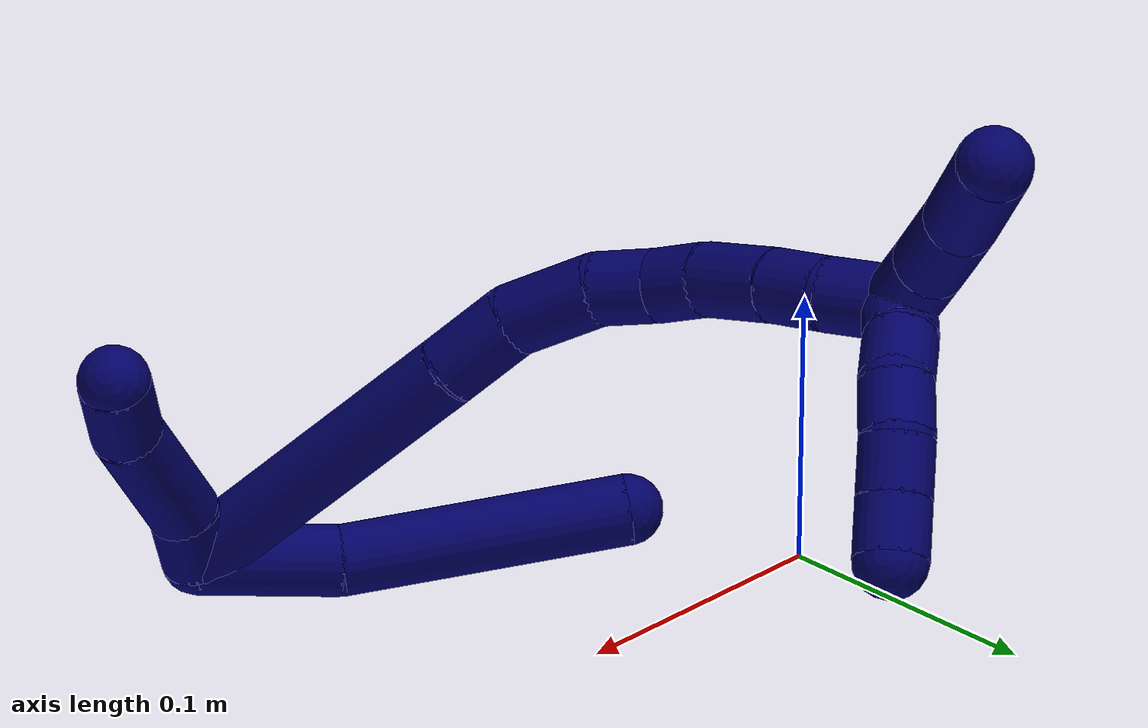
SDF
<sdf version="1.7">
 <world name="default">
  <model name="7">
   <static>0</static>
   <link name="7">
    <collision name="collision-cylinder-e_1_2_8">
     <pose>-0.016817 0.016611 -0.007373 -1.98852 -0.746658 1.08437</pose>
     <geometry><cylinder><radius>0.0125</radius><length>0.049521</length></cylinder></geometry>
     <surface>
      <friction><ode><mu>1.16</mu><mu2>1.16</mu2><slip1>0</slip1><slip2>0</slip2></ode></friction>
      <contact><ode><kp>1e+06</kp><kd>1</kd><max_vel>0</max_vel><min_depth>0.001</min_depth></ode></contact>
     </surface>
    </collision>
    <visual name="visual-cylinder-e_1_2_8">
     <pose>-0.016817 0.016611 -0.007373 -1.98852 -0.746658 1.08437</pose>
     <geometry><cylinder><radius>0.0125</radius><length>0.049521</length></cylinder></geometry>
     <material><ambient>0.003922 0 0.403922 1</ambient></material>
    </visual>
    <collision name="collision-cylinder-e_2_8_6">
     <pose>-0.074205 0.061509 -0.023569 -1.87315 -0.939969 1.20867</pose>
     <geometry><cylinder><radius>0.0125</radius><length>0.100479</length></cylinder></geometry>
     <surface>
      <friction><ode><mu>1.16</mu><mu2>1.16</mu2><slip1>0</slip1><slip2>0</slip2></ode></friction>
      <contact><ode><kp>1e+06</kp><kd>1</kd><max_vel>0</max_vel><min_depth>0.001</min_depth></ode></contact>
     </surface>
    </collision>
    <visual name="visual-cylinder-e_2_8_6">
     <pose>-0.074205 0.061509 -0.023569 -1.87315 -0.939969 1.20867</pose>
     <geometry><cylinder><radius>0.0125</radius><length>0.100479</length></cylinder></geometry>
     <material><ambient>0.003922 0 0.403922 1</ambient></material>
    </visual>
    <collision name="collision-cylinder-e_1_2_9">
     <pose>-0.004128 -0.004495 0.010021 0.421641 -0.359549 -0.077744</pose>
     <geometry><cylinder><radius>0.0125</radius><length>0.023467</length></cylinder></geometry>
     <surface>
      <friction><ode><mu>1.16</mu><mu2>1.16</mu2><slip1>0</slip1><slip2>0</slip2></ode></friction>
      <contact><ode><kp>1e+06</kp><kd>1</kd><max_vel>0</max_vel><min_depth>0.001</min_depth></ode></contact>
     </surface>
    </collision>
    <visual name="visual-cylinder-e_1_2_9">
     <pose>-0.004128 -0.004495 0.010021 0.421641 -0.359549 -0.077744</pose>
     <geometry><cylinder><radius>0.0125</radius><length>0.023467</length></cylinder></geometry>
     <material><ambient>0.003922 0 0.403922 1</ambient></material>
    </visual>
    <collision name="collision-cylinder-e_2_9_10">
     <pose>-0.011009 -0.019237 0.041925 0.437963 -0.113402 -0.025263</pose>
     <geometry><cylinder><radius>0.0125</radius><length>0.048639</length></cylinder></geometry>
     <surface>
      <friction><ode><mu>1.16</mu><mu2>1.16</mu2><slip1>0</slip1><slip2>0</slip2></ode></friction>
      <contact><ode><kp>1e+06</kp><kd>1</kd><max_vel>0</max_vel><min_depth>0.001</min_depth></ode></contact>
     </surface>
    </collision>
    <visual name="visual-cylinder-e_2_9_10">
     <pose>-0.011009 -0.019237 0.041925 0.437963 -0.113402 -0.025263</pose>
     <geometry><cylinder><radius>0.0125</radius><length>0.048639</length></cylinder></geometry>
     <material><ambient>0.003922 0 0.403922 1</ambient></material>
    </visual>
    <collision name="collision-cylinder-e_3_10_5">
     <pose>-0.018202 -0.033208 0.076494 0.285484 -0.324098 -0.046983</pose>
     <geometry><cylinder><radius>0.0125</radius><length>0.027894</length></cylinder></geometry>
     <surface>
      <friction><ode><mu>1.16</mu><mu2>1.16</mu2><slip1>0</slip1><slip2>0</slip2></ode></friction>
      <contact><ode><kp>1e+06</kp><kd>1</kd><max_vel>0</max_vel><min_depth>0.001</min_depth></ode></contact>
     </surface>
    </collision>
    <visual name="visual-cylinder-e_3_10_5">
     <pose>-0.018202 -0.033208 0.076494 0.285484 -0.324098 -0.046983</pose>
     <geometry><cylinder><radius>0.0125</radius><length>0.027894</length></cylinder></geometry>
     <material><ambient>0.003922 0 0.403922 1</ambient></material>
    </visual>
    <collision name="collision-cylinder-e_1_2_11">
     <pose>-0.051505 0.016066 0.025154 -0.568402 -1.04559 0.333545</pose>
     <geometry><cylinder><radius>0.0125</radius><length>0.119056</length></cylinder></geometry>
     <surface>
      <friction><ode><mu>1.16</mu><mu2>1.16</mu2><slip1>0</slip1><slip2>0</slip2></ode></friction>
      <contact><ode><kp>1e+06</kp><kd>1</kd><max_vel>0</max_vel><min_depth>0.001</min_depth></ode></contact>
     </surface>
    </collision>
    <visual name="visual-cylinder-e_1_2_11">
     <pose>-0.051505 0.016066 0.025154 -0.568402 -1.04559 0.333545</pose>
     <geometry><cylinder><radius>0.0125</radius><length>0.119056</length></cylinder></geometry>
     <material><ambient>0.003922 0 0.403922 1</ambient></material>
    </visual>
    <collision name="collision-cylinder-e_2_11_12">
     <pose>-0.116234 0.035671 0.05518 -0.628098 -1.14349 0.412043</pose>
     <geometry><cylinder><radius>0.0125</radius><length>0.029063</length></cylinder></geometry>
     <surface>
      <friction><ode><mu>1.16</mu><mu2>1.16</mu2><slip1>0</slip1><slip2>0</slip2></ode></friction>
      <contact><ode><kp>1e+06</kp><kd>1</kd><max_vel>0</max_vel><min_depth>0.001</min_depth></ode></contact>
     </surface>
    </collision>
    <visual name="visual-cylinder-e_2_11_12">
     <pose>-0.116234 0.035671 0.05518 -0.628098 -1.14349 0.412043</pose>
     <geometry><cylinder><radius>0.0125</radius><length>0.029063</length></cylinder></geometry>
     <material><ambient>0.003922 0 0.403922 1</ambient></material>
    </visual>
    <collision name="collision-cylinder-e_3_12_13">
     <pose>-0.142516 0.047721 0.065816 -0.975626 -0.903865 0.504174</pose>
     <geometry><cylinder><radius>0.0125</radius><length>0.033236</length></cylinder></geometry>
     <surface>
      <friction><ode><mu>1.16</mu><mu2>1.16</mu2><slip1>0</slip1><slip2>0</slip2></ode></friction>
      <contact><ode><kp>1e+06</kp><kd>1</kd><max_vel>0</max_vel><min_depth>0.001</min_depth></ode></contact>
     </surface>
    </collision>
    <visual name="visual-cylinder-e_3_12_13">
     <pose>-0.142516 0.047721 0.065816 -0.975626 -0.903865 0.504174</pose>
     <geometry><cylinder><radius>0.0125</radius><length>0.033236</length></cylinder></geometry>
     <material><ambient>0.003922 0 0.403922 1</ambient></material>
    </visual>
    <collision name="collision-cylinder-e_4_13_14">
     <pose>-0.162422 0.064003 0.074373 -1.22558 -0.692394 0.496759</pose>
     <geometry><cylinder><radius>0.0125</radius><length>0.021455</length></cylinder></geometry>
     <surface>
      <friction><ode><mu>1.16</mu><mu2>1.16</mu2><slip1>0</slip1><slip2>0</slip2></ode></friction>
      <contact><ode><kp>1e+06</kp><kd>1</kd><max_vel>0</max_vel><min_depth>0.001</min_depth></ode></contact>
     </surface>
    </collision>
    <visual name="visual-cylinder-e_4_13_14">
     <pose>-0.162422 0.064003 0.074373 -1.22558 -0.692394 0.496759</pose>
     <geometry><cylinder><radius>0.0125</radius><length>0.021455</length></cylinder></geometry>
     <material><ambient>0.003922 0 0.403922 1</ambient></material>
    </visual>
    <collision name="collision-cylinder-e_5_14_15">
     <pose>-0.175082 0.078405 0.082096 -0.93172 -0.613022 0.315591</pose>
     <geometry><cylinder><radius>0.0125</radius><length>0.020204</length></cylinder></geometry>
     <surface>
      <friction><ode><mu>1.16</mu><mu2>1.16</mu2><slip1>0</slip1><slip2>0</slip2></ode></friction>
      <contact><ode><kp>1e+06</kp><kd>1</kd><max_vel>0</max_vel><min_depth>0.001</min_depth></ode></contact>
     </surface>
    </collision>
    <visual name="visual-cylinder-e_5_14_15">
     <pose>-0.175082 0.078405 0.082096 -0.93172 -0.613022 0.315591</pose>
     <geometry><cylinder><radius>0.0125</radius><length>0.020204</length></cylinder></geometry>
     <material><ambient>0.003922 0 0.403922 1</ambient></material>
    </visual>
    <collision name="collision-cylinder-e_6_15_16">
     <pose>-0.186888 0.096073 0.094785 -0.957899 -0.418089 0.219437</pose>
     <geometry><cylinder><radius>0.0125</radius><length>0.029527</length></cylinder></geometry>
     <surface>
      <friction><ode><mu>1.16</mu><mu2>1.16</mu2><slip1>0</slip1><slip2>0</slip2></ode></friction>
      <contact><ode><kp>1e+06</kp><kd>1</kd><max_vel>0</max_vel><min_depth>0.001</min_depth></ode></contact>
     </surface>
    </collision>
    <visual name="visual-cylinder-e_6_15_16">
     <pose>-0.186888 0.096073 0.094785 -0.957899 -0.418089 0.219437</pose>
     <geometry><cylinder><radius>0.0125</radius><length>0.029527</length></cylinder></geometry>
     <material><ambient>0.003922 0 0.403922 1</ambient></material>
    </visual>
    <collision name="collision-cylinder-e_7_16_17">
     <pose>-0.196977 0.115809 0.107973 -1.01304 -0.379934 0.212557</pose>
     <geometry><cylinder><radius>0.0125</radius><length>0.022081</length></cylinder></geometry>
     <surface>
      <friction><ode><mu>1.16</mu><mu2>1.16</mu2><slip1>0</slip1><slip2>0</slip2></ode></friction>
      <contact><ode><kp>1e+06</kp><kd>1</kd><max_vel>0</max_vel><min_depth>0.001</min_depth></ode></contact>
     </surface>
    </collision>
    <visual name="visual-cylinder-e_7_16_17">
     <pose>-0.196977 0.115809 0.107973 -1.01304 -0.379934 0.212557</pose>
     <geometry><cylinder><radius>0.0125</radius><length>0.022081</length></cylinder></geometry>
     <material><ambient>0.003922 0 0.403922 1</ambient></material>
    </visual>
    <collision name="collision-cylinder-e_8_17_1">
     <pose>-0.207113 0.134976 0.117263 -1.21723 -0.496266 0.349504</pose>
     <geometry><cylinder><radius>0.0125</radius><length>0.025378</length></cylinder></geometry>
     <surface>
      <friction><ode><mu>1.16</mu><mu2>1.16</mu2><slip1>0</slip1><slip2>0</slip2></ode></friction>
      <contact><ode><kp>1e+06</kp><kd>1</kd><max_vel>0</max_vel><min_depth>0.001</min_depth></ode></contact>
     </surface>
    </collision>
    <visual name="visual-cylinder-e_8_17_1">
     <pose>-0.207113 0.134976 0.117263 -1.21723 -0.496266 0.349504</pose>
     <geometry><cylinder><radius>0.0125</radius><length>0.025378</length></cylinder></geometry>
     <material><ambient>0.003922 0 0.403922 1</ambient></material>
    </visual>
    <collision name="collision-cylinder-e_1_1_18">
     <pose>-0.208359 0.151244 0.127712 -0.722027 0.50024 -0.192316</pose>
     <geometry><cylinder><radius>0.0125</radius><length>0.02</length></cylinder></geometry>
     <surface>
      <friction><ode><mu>1.16</mu><mu2>1.16</mu2><slip1>0</slip1><slip2>0</slip2></ode></friction>
      <contact><ode><kp>1e+06</kp><kd>1</kd><max_vel>0</max_vel><min_depth>0.001</min_depth></ode></contact>
     </surface>
    </collision>
    <visual name="visual-cylinder-e_1_1_18">
     <pose>-0.208359 0.151244 0.127712 -0.722027 0.50024 -0.192316</pose>
     <geometry><cylinder><radius>0.0125</radius><length>0.02</length></cylinder></geometry>
     <material><ambient>0.003922 0 0.403922 1</ambient></material>
    </visual>
    <collision name="collision-cylinder-e_2_18_19">
     <pose>-0.197313 0.162652 0.139727 -0.801644 0.675118 -0.29531</pose>
     <geometry><cylinder><radius>0.0125</radius><length>0.02</length></cylinder></geometry>
     <surface>
      <friction><ode><mu>1.16</mu><mu2>1.16</mu2><slip1>0</slip1><slip2>0</slip2></ode></friction>
      <contact><ode><kp>1e+06</kp><kd>1</kd><max_vel>0</max_vel><min_depth>0.001</min_depth></ode></contact>
     </surface>
    </collision>
    <visual name="visual-cylinder-e_2_18_19">
     <pose>-0.197313 0.162652 0.139727 -0.801644 0.675118 -0.29531</pose>
     <geometry><cylinder><radius>0.0125</radius><length>0.02</length></cylinder></geometry>
     <material><ambient>0.003922 0 0.403922 1</ambient></material>
    </visual>
    <collision name="collision-cylinder-e_3_19_20">
     <pose>-0.184372 0.175199 0.14782 -1.20417 0.732978 -0.515788</pose>
     <geometry><cylinder><radius>0.0125</radius><length>0.02</length></cylinder></geometry>
     <surface>
      <friction><ode><mu>1.16</mu><mu2>1.16</mu2><slip1>0</slip1><slip2>0</slip2></ode></friction>
      <contact><ode><kp>1e+06</kp><kd>1</kd><max_vel>0</max_vel><min_depth>0.001</min_depth></ode></contact>
     </surface>
    </collision>
    <visual name="visual-cylinder-e_3_19_20">
     <pose>-0.184372 0.175199 0.14782 -1.20417 0.732978 -0.515788</pose>
     <geometry><cylinder><radius>0.0125</radius><length>0.02</length></cylinder></geometry>
     <material><ambient>0.003922 0 0.403922 1</ambient></material>
    </visual>
    <collision name="collision-cylinder-e_4_20_21">
     <pose>-0.170129 0.188667 0.151055 -1.4837 0.855939 -0.791974</pose>
     <geometry><cylinder><radius>0.0125</radius><length>0.02</length></cylinder></geometry>
     <surface>
      <friction><ode><mu>1.16</mu><mu2>1.16</mu2><slip1>0</slip1><slip2>0</slip2></ode></friction>
      <contact><ode><kp>1e+06</kp><kd>1</kd><max_vel>0</max_vel><min_depth>0.001</min_depth></ode></contact>
     </surface>
    </collision>
    <visual name="visual-cylinder-e_4_20_21">
     <pose>-0.170129 0.188667 0.151055 -1.4837 0.855939 -0.791974</pose>
     <geometry><cylinder><radius>0.0125</radius><length>0.02</length></cylinder></geometry>
     <material><ambient>0.003922 0 0.403922 1</ambient></material>
    </visual>
    <collision name="collision-cylinder-e_5_21_4">
     <pose>-0.155107 0.201756 0.15271 -1.40681 0.843615 -0.727324</pose>
     <geometry><cylinder><radius>0.0125</radius><length>0.02</length></cylinder></geometry>
     <surface>
      <friction><ode><mu>1.16</mu><mu2>1.16</mu2><slip1>0</slip1><slip2>0</slip2></ode></friction>
      <contact><ode><kp>1e+06</kp><kd>1</kd><max_vel>0</max_vel><min_depth>0.001</min_depth></ode></contact>
     </surface>
    </collision>
    <visual name="visual-cylinder-e_5_21_4">
     <pose>-0.155107 0.201756 0.15271 -1.40681 0.843615 -0.727324</pose>
     <geometry><cylinder><radius>0.0125</radius><length>0.02</length></cylinder></geometry>
     <material><ambient>0.003922 0 0.403922 1</ambient></material>
    </visual>
    <collision name="collision-cylinder-e_1_1_22">
     <pose>-0.219782 0.147374 0.13303 -0.160663 -0.502542 0.041325</pose>
     <geometry><cylinder><radius>0.0125</radius><length>0.027518</length></cylinder></geometry>
     <surface>
      <friction><ode><mu>1.16</mu><mu2>1.16</mu2><slip1>0</slip1><slip2>0</slip2></ode></friction>
      <contact><ode><kp>1e+06</kp><kd>1</kd><max_vel>0</max_vel><min_depth>0.001</min_depth></ode></contact>
     </surface>
    </collision>
    <visual name="visual-cylinder-e_1_1_22">
     <pose>-0.219782 0.147374 0.13303 -0.160663 -0.502542 0.041325</pose>
     <geometry><cylinder><radius>0.0125</radius><length>0.027518</length></cylinder></geometry>
     <material><ambient>0.003922 0 0.403922 1</ambient></material>
    </visual>
    <collision name="collision-cylinder-e_2_22_23">
     <pose>-0.233214 0.151198 0.157763 -0.14664 -0.483137 0.03619</pose>
     <geometry><cylinder><radius>0.0125</radius><length>0.029294</length></cylinder></geometry>
     <surface>
      <friction><ode><mu>1.16</mu><mu2>1.16</mu2><slip1>0</slip1><slip2>0</slip2></ode></friction>
      <contact><ode><kp>1e+06</kp><kd>1</kd><max_vel>0</max_vel><min_depth>0.001</min_depth></ode></contact>
     </surface>
    </collision>
    <visual name="visual-cylinder-e_2_22_23">
     <pose>-0.233214 0.151198 0.157763 -0.14664 -0.483137 0.03619</pose>
     <geometry><cylinder><radius>0.0125</radius><length>0.029294</length></cylinder></geometry>
     <material><ambient>0.003922 0 0.403922 1</ambient></material>
    </visual>
    <collision name="collision-cylinder-e_3_23_3">
     <pose>-0.247215 0.155693 0.190788 -0.128039 -0.339758 0.021992</pose>
     <geometry><cylinder><radius>0.0125</radius><length>0.043188</length></cylinder></geometry>
     <surface>
      <friction><ode><mu>1.16</mu><mu2>1.16</mu2><slip1>0</slip1><slip2>0</slip2></ode></friction>
      <contact><ode><kp>1e+06</kp><kd>1</kd><max_vel>0</max_vel><min_depth>0.001</min_depth></ode></contact>
     </surface>
    </collision>
    <visual name="visual-cylinder-e_3_23_3">
     <pose>-0.247215 0.155693 0.190788 -0.128039 -0.339758 0.021992</pose>
     <geometry><cylinder><radius>0.0125</radius><length>0.043188</length></cylinder></geometry>
     <material><ambient>0.003922 0 0.403922 1</ambient></material>
    </visual>
    <collision name="collision-sphere-3">
     <pose>-0.254411 0.158292 0.210981 0 -0 0</pose>
     <geometry><sphere><radius>0.0125</radius></sphere></geometry>
     <surface>
      <friction><ode><mu>1.16</mu><mu2>1.16</mu2><slip1>0</slip1><slip2>0</slip2></ode></friction>
      <contact><ode><kp>1e+06</kp><kd>1</kd><max_vel>0</max_vel><min_depth>0.001</min_depth></ode></contact>
     </surface>
    </collision>
    <visual name="visual-sphere-3">
     <pose>-0.254411 0.158292 0.210981 0 -0 0</pose>
     <geometry><sphere><radius>0.0125</radius></sphere></geometry>
     <material><ambient>0.003922 0 0.403922 1</ambient></material>
    </visual>
    <collision name="collision-sphere-23">
     <pose>-0.240018 0.153093 0.170594 0 -0 0</pose>
     <geometry><sphere><radius>0.0125</radius></sphere></geometry>
     <surface>
      <friction><ode><mu>1.16</mu><mu2>1.16</mu2><slip1>0</slip1><slip2>0</slip2></ode></friction>
      <contact><ode><kp>1e+06</kp><kd>1</kd><max_vel>0</max_vel><min_depth>0.001</min_depth></ode></contact>
     </surface>
    </collision>
    <visual name="visual-sphere-23">
     <pose>-0.240018 0.153093 0.170594 0 -0 0</pose>
     <geometry><sphere><radius>0.0125</radius></sphere></geometry>
     <material><ambient>0.003922 0 0.403922 1</ambient></material>
    </visual>
    <collision name="collision-sphere-22">
     <pose>-0.22641 0.149302 0.144932 0 -0 0</pose>
     <geometry><sphere><radius>0.0125</radius></sphere></geometry>
     <surface>
      <friction><ode><mu>1.16</mu><mu2>1.16</mu2><slip1>0</slip1><slip2>0</slip2></ode></friction>
      <contact><ode><kp>1e+06</kp><kd>1</kd><max_vel>0</max_vel><min_depth>0.001</min_depth></ode></contact>
     </surface>
    </collision>
    <visual name="visual-sphere-22">
     <pose>-0.22641 0.149302 0.144932 0 -0 0</pose>
     <geometry><sphere><radius>0.0125</radius></sphere></geometry>
     <material><ambient>0.003922 0 0.403922 1</ambient></material>
    </visual>
    <collision name="collision-sphere-4">
     <pose>-0.147636 0.208314 0.153795 0 -0 0</pose>
     <geometry><sphere><radius>0.0125</radius></sphere></geometry>
     <surface>
      <friction><ode><mu>1.16</mu><mu2>1.16</mu2><slip1>0</slip1><slip2>0</slip2></ode></friction>
      <contact><ode><kp>1e+06</kp><kd>1</kd><max_vel>0</max_vel><min_depth>0.001</min_depth></ode></contact>
     </surface>
    </collision>
    <visual name="visual-sphere-4">
     <pose>-0.147636 0.208314 0.153795 0 -0 0</pose>
     <geometry><sphere><radius>0.0125</radius></sphere></geometry>
     <material><ambient>0.003922 0 0.403922 1</ambient></material>
    </visual>
    <collision name="collision-sphere-21">
     <pose>-0.162577 0.195197 0.151625 0 -0 0</pose>
     <geometry><sphere><radius>0.0125</radius></sphere></geometry>
     <surface>
      <friction><ode><mu>1.16</mu><mu2>1.16</mu2><slip1>0</slip1><slip2>0</slip2></ode></friction>
      <contact><ode><kp>1e+06</kp><kd>1</kd><max_vel>0</max_vel><min_depth>0.001</min_depth></ode></contact>
     </surface>
    </collision>
    <visual name="visual-sphere-21">
     <pose>-0.162577 0.195197 0.151625 0 -0 0</pose>
     <geometry><sphere><radius>0.0125</radius></sphere></geometry>
     <material><ambient>0.003922 0 0.403922 1</ambient></material>
    </visual>
    <collision name="collision-sphere-20">
     <pose>-0.177681 0.182137 0.150484 0 -0 0</pose>
     <geometry><sphere><radius>0.0125</radius></sphere></geometry>
     <surface>
      <friction><ode><mu>1.16</mu><mu2>1.16</mu2><slip1>0</slip1><slip2>0</slip2></ode></friction>
      <contact><ode><kp>1e+06</kp><kd>1</kd><max_vel>0</max_vel><min_depth>0.001</min_depth></ode></contact>
     </surface>
    </collision>
    <visual name="visual-sphere-20">
     <pose>-0.177681 0.182137 0.150484 0 -0 0</pose>
     <geometry><sphere><radius>0.0125</radius></sphere></geometry>
     <material><ambient>0.003922 0 0.403922 1</ambient></material>
    </visual>
    <collision name="collision-sphere-5">
     <pose>-0.022644 -0.036932 0.08918 0 -0 0</pose>
     <geometry><sphere><radius>0.0125</radius></sphere></geometry>
     <surface>
      <friction><ode><mu>1.16</mu><mu2>1.16</mu2><slip1>0</slip1><slip2>0</slip2></ode></friction>
      <contact><ode><kp>1e+06</kp><kd>1</kd><max_vel>0</max_vel><min_depth>0.001</min_depth></ode></contact>
     </surface>
    </collision>
    <visual name="visual-sphere-5">
     <pose>-0.022644 -0.036932 0.08918 0 -0 0</pose>
     <geometry><sphere><radius>0.0125</radius></sphere></geometry>
     <material><ambient>0.003922 0 0.403922 1</ambient></material>
    </visual>
    <collision name="collision-sphere-10">
     <pose>-0.013761 -0.029485 0.063808 0 -0 0</pose>
     <geometry><sphere><radius>0.0125</radius></sphere></geometry>
     <surface>
      <friction><ode><mu>1.16</mu><mu2>1.16</mu2><slip1>0</slip1><slip2>0</slip2></ode></friction>
      <contact><ode><kp>1e+06</kp><kd>1</kd><max_vel>0</max_vel><min_depth>0.001</min_depth></ode></contact>
     </surface>
    </collision>
    <visual name="visual-sphere-10">
     <pose>-0.013761 -0.029485 0.063808 0 -0 0</pose>
     <geometry><sphere><radius>0.0125</radius></sphere></geometry>
     <material><ambient>0.003922 0 0.403922 1</ambient></material>
    </visual>
    <collision name="collision-sphere-6">
     <pose>-0.114775 0.089797 -0.032392 0 -0 0</pose>
     <geometry><sphere><radius>0.0125</radius></sphere></geometry>
     <surface>
      <friction><ode><mu>1.16</mu><mu2>1.16</mu2><slip1>0</slip1><slip2>0</slip2></ode></friction>
      <contact><ode><kp>1e+06</kp><kd>1</kd><max_vel>0</max_vel><min_depth>0.001</min_depth></ode></contact>
     </surface>
    </collision>
    <visual name="visual-sphere-6">
     <pose>-0.114775 0.089797 -0.032392 0 -0 0</pose>
     <geometry><sphere><radius>0.0125</radius></sphere></geometry>
     <material><ambient>0.003922 0 0.403922 1</ambient></material>
    </visual>
    <collision name="collision-sphere-9">
     <pose>-0.008257 -0.00899 0.020042 0 -0 0</pose>
     <geometry><sphere><radius>0.0125</radius></sphere></geometry>
     <surface>
      <friction><ode><mu>1.16</mu><mu2>1.16</mu2><slip1>0</slip1><slip2>0</slip2></ode></friction>
      <contact><ode><kp>1e+06</kp><kd>1</kd><max_vel>0</max_vel><min_depth>0.001</min_depth></ode></contact>
     </surface>
    </collision>
    <visual name="visual-sphere-9">
     <pose>-0.008257 -0.00899 0.020042 0 -0 0</pose>
     <geometry><sphere><radius>0.0125</radius></sphere></geometry>
     <material><ambient>0.003922 0 0.403922 1</ambient></material>
    </visual>
    <collision name="collision-sphere-2">
     <geometry><sphere><radius>0.0125</radius></sphere></geometry>
     <surface>
      <friction><ode><mu>1.16</mu><mu2>1.16</mu2><slip1>0</slip1><slip2>0</slip2></ode></friction>
      <contact><ode><kp>1e+06</kp><kd>1</kd><max_vel>0</max_vel><min_depth>0.001</min_depth></ode></contact>
     </surface>
    </collision>
    <visual name="visual-sphere-2">
     <geometry><sphere><radius>0.0125</radius></sphere></geometry>
     <material><ambient>0.003922 0 0.403922 1</ambient></material>
    </visual>
    <collision name="collision-sphere-19">
     <pose>-0.191063 0.168261 0.145156 0 -0 0</pose>
     <geometry><sphere><radius>0.0125</radius></sphere></geometry>
     <surface>
      <friction><ode><mu>1.16</mu><mu2>1.16</mu2><slip1>0</slip1><slip2>0</slip2></ode></friction>
      <contact><ode><kp>1e+06</kp><kd>1</kd><max_vel>0</max_vel><min_depth>0.001</min_depth></ode></contact>
     </surface>
    </collision>
    <visual name="visual-sphere-19">
     <pose>-0.191063 0.168261 0.145156 0 -0 0</pose>
     <geometry><sphere><radius>0.0125</radius></sphere></geometry>
     <material><ambient>0.003922 0 0.403922 1</ambient></material>
    </visual>
    <collision name="collision-sphere-8">
     <pose>-0.033634 0.033221 -0.014745 0 -0 0</pose>
     <geometry><sphere><radius>0.0125</radius></sphere></geometry>
     <surface>
      <friction><ode><mu>1.16</mu><mu2>1.16</mu2><slip1>0</slip1><slip2>0</slip2></ode></friction>
      <contact><ode><kp>1e+06</kp><kd>1</kd><max_vel>0</max_vel><min_depth>0.001</min_depth></ode></contact>
     </surface>
    </collision>
    <visual name="visual-sphere-8">
     <pose>-0.033634 0.033221 -0.014745 0 -0 0</pose>
     <geometry><sphere><radius>0.0125</radius></sphere></geometry>
     <material><ambient>0.003922 0 0.403922 1</ambient></material>
    </visual>
    <collision name="collision-sphere-11">
     <pose>-0.103009 0.032132 0.050307 0 -0 0</pose>
     <geometry><sphere><radius>0.0125</radius></sphere></geometry>
     <surface>
      <friction><ode><mu>1.16</mu><mu2>1.16</mu2><slip1>0</slip1><slip2>0</slip2></ode></friction>
      <contact><ode><kp>1e+06</kp><kd>1</kd><max_vel>0</max_vel><min_depth>0.001</min_depth></ode></contact>
     </surface>
    </collision>
    <visual name="visual-sphere-11">
     <pose>-0.103009 0.032132 0.050307 0 -0 0</pose>
     <geometry><sphere><radius>0.0125</radius></sphere></geometry>
     <material><ambient>0.003922 0 0.403922 1</ambient></material>
    </visual>
    <collision name="collision-sphere-12">
     <pose>-0.129459 0.039209 0.060053 0 -0 0</pose>
     <geometry><sphere><radius>0.0125</radius></sphere></geometry>
     <surface>
      <friction><ode><mu>1.16</mu><mu2>1.16</mu2><slip1>0</slip1><slip2>0</slip2></ode></friction>
      <contact><ode><kp>1e+06</kp><kd>1</kd><max_vel>0</max_vel><min_depth>0.001</min_depth></ode></contact>
     </surface>
    </collision>
    <visual name="visual-sphere-12">
     <pose>-0.129459 0.039209 0.060053 0 -0 0</pose>
     <geometry><sphere><radius>0.0125</radius></sphere></geometry>
     <material><ambient>0.003922 0 0.403922 1</ambient></material>
    </visual>
    <collision name="collision-sphere-13">
     <pose>-0.155574 0.056233 0.071579 0 -0 0</pose>
     <geometry><sphere><radius>0.0125</radius></sphere></geometry>
     <surface>
      <friction><ode><mu>1.16</mu><mu2>1.16</mu2><slip1>0</slip1><slip2>0</slip2></ode></friction>
      <contact><ode><kp>1e+06</kp><kd>1</kd><max_vel>0</max_vel><min_depth>0.001</min_depth></ode></contact>
     </surface>
    </collision>
    <visual name="visual-sphere-13">
     <pose>-0.155574 0.056233 0.071579 0 -0 0</pose>
     <geometry><sphere><radius>0.0125</radius></sphere></geometry>
     <material><ambient>0.003922 0 0.403922 1</ambient></material>
    </visual>
    <collision name="collision-sphere-14">
     <pose>-0.16927 0.071773 0.077168 0 -0 0</pose>
     <geometry><sphere><radius>0.0125</radius></sphere></geometry>
     <surface>
      <friction><ode><mu>1.16</mu><mu2>1.16</mu2><slip1>0</slip1><slip2>0</slip2></ode></friction>
      <contact><ode><kp>1e+06</kp><kd>1</kd><max_vel>0</max_vel><min_depth>0.001</min_depth></ode></contact>
     </surface>
    </collision>
    <visual name="visual-sphere-14">
     <pose>-0.16927 0.071773 0.077168 0 -0 0</pose>
     <geometry><sphere><radius>0.0125</radius></sphere></geometry>
     <material><ambient>0.003922 0 0.403922 1</ambient></material>
    </visual>
    <collision name="collision-sphere-15">
     <pose>-0.180894 0.085037 0.087024 0 -0 0</pose>
     <geometry><sphere><radius>0.0125</radius></sphere></geometry>
     <surface>
      <friction><ode><mu>1.16</mu><mu2>1.16</mu2><slip1>0</slip1><slip2>0</slip2></ode></friction>
      <contact><ode><kp>1e+06</kp><kd>1</kd><max_vel>0</max_vel><min_depth>0.001</min_depth></ode></contact>
     </surface>
    </collision>
    <visual name="visual-sphere-15">
     <pose>-0.180894 0.085037 0.087024 0 -0 0</pose>
     <geometry><sphere><radius>0.0125</radius></sphere></geometry>
     <material><ambient>0.003922 0 0.403922 1</ambient></material>
    </visual>
    <collision name="collision-sphere-16">
     <pose>-0.192883 0.107109 0.102546 0 -0 0</pose>
     <geometry><sphere><radius>0.0125</radius></sphere></geometry>
     <surface>
      <friction><ode><mu>1.16</mu><mu2>1.16</mu2><slip1>0</slip1><slip2>0</slip2></ode></friction>
      <contact><ode><kp>1e+06</kp><kd>1</kd><max_vel>0</max_vel><min_depth>0.001</min_depth></ode></contact>
     </surface>
    </collision>
    <visual name="visual-sphere-16">
     <pose>-0.192883 0.107109 0.102546 0 -0 0</pose>
     <geometry><sphere><radius>0.0125</radius></sphere></geometry>
     <material><ambient>0.003922 0 0.403922 1</ambient></material>
    </visual>
    <collision name="collision-sphere-17">
     <pose>-0.201072 0.124508 0.1134 0 -0 0</pose>
     <geometry><sphere><radius>0.0125</radius></sphere></geometry>
     <surface>
      <friction><ode><mu>1.16</mu><mu2>1.16</mu2><slip1>0</slip1><slip2>0</slip2></ode></friction>
      <contact><ode><kp>1e+06</kp><kd>1</kd><max_vel>0</max_vel><min_depth>0.001</min_depth></ode></contact>
     </surface>
    </collision>
    <visual name="visual-sphere-17">
     <pose>-0.201072 0.124508 0.1134 0 -0 0</pose>
     <geometry><sphere><radius>0.0125</radius></sphere></geometry>
     <material><ambient>0.003922 0 0.403922 1</ambient></material>
    </visual>
    <collision name="collision-sphere-1">
     <pose>-0.213155 0.145445 0.121127 0 -0 0</pose>
     <geometry><sphere><radius>0.0125</radius></sphere></geometry>
     <surface>
      <friction><ode><mu>1.16</mu><mu2>1.16</mu2><slip1>0</slip1><slip2>0</slip2></ode></friction>
      <contact><ode><kp>1e+06</kp><kd>1</kd><max_vel>0</max_vel><min_depth>0.001</min_depth></ode></contact>
     </surface>
    </collision>
    <visual name="visual-sphere-1">
     <pose>-0.213155 0.145445 0.121127 0 -0 0</pose>
     <geometry><sphere><radius>0.0125</radius></sphere></geometry>
     <material><ambient>0.003922 0 0.403922 1</ambient></material>
    </visual>
    <collision name="collision-sphere-18">
     <pose>-0.203563 0.157043 0.134297 0 -0 0</pose>
     <geometry><sphere><radius>0.0125</radius></sphere></geometry>
     <surface>
      <friction><ode><mu>1.16</mu><mu2>1.16</mu2><slip1>0</slip1><slip2>0</slip2></ode></friction>
      <contact><ode><kp>1e+06</kp><kd>1</kd><max_vel>0</max_vel><min_depth>0.001</min_depth></ode></contact>
     </surface>
    </collision>
    <visual name="visual-sphere-18">
     <pose>-0.203563 0.157043 0.134297 0 -0 0</pose>
     <geometry><sphere><radius>0.0125</radius></sphere></geometry>
     <material><ambient>0.003922 0 0.403922 1</ambient></material>
    </visual>
    <inertial>
     <pose>-0.116912 0.072196 0.067702 0 -0 0</pose>
     <mass>0.75</mass>
     <inertia>
      <ixx>0.000195</ixx>
      <ixy>0</ixy>
      <ixz>0</ixz>
      <iyy>0.000348</iyy>
      <iyz>0</iyz>
      <izz>0.000136</izz>
     </inertia>
    </inertial>
   </link>
   <pose>0.169428 -0.124113 0.015749 -0.639202 0.662413 -0.27674</pose>
  </model>
 </world>
</sdf>
